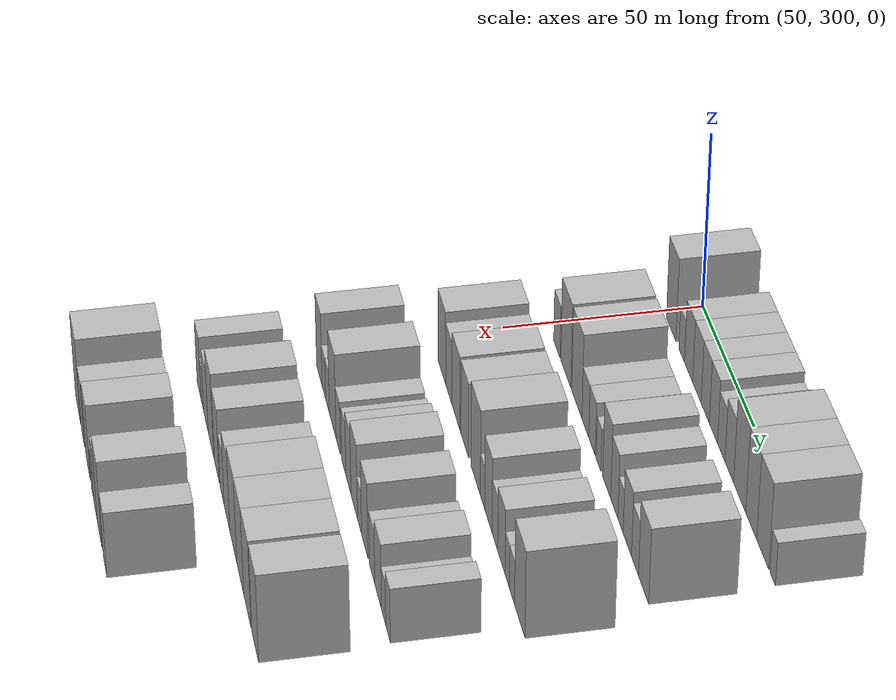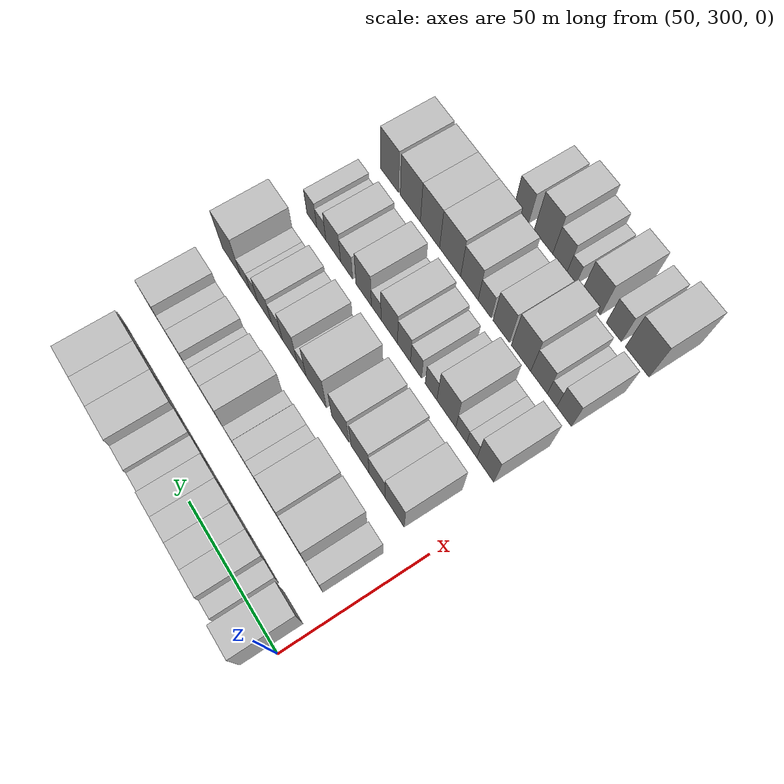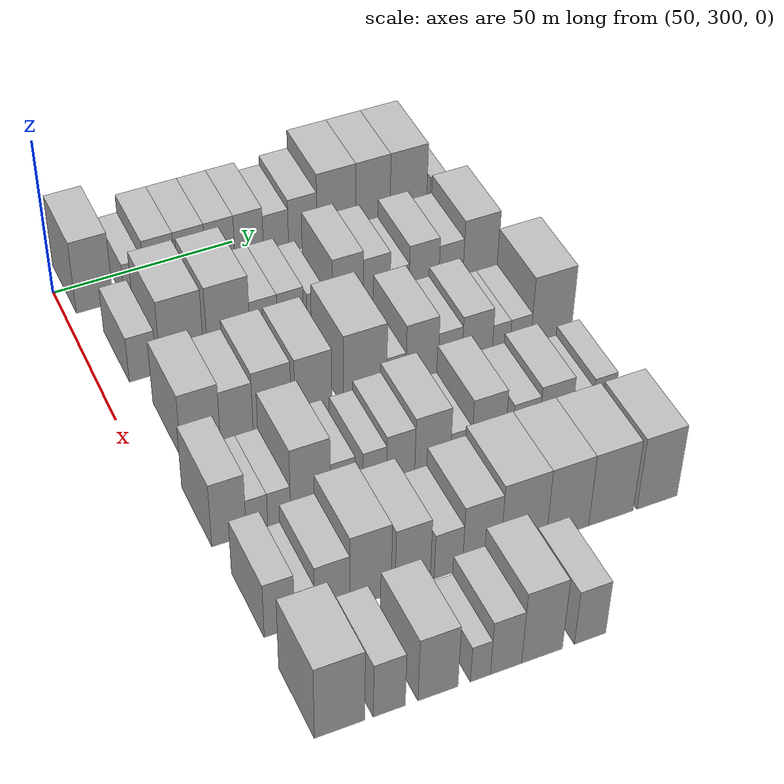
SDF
<sdf version="1.6">
 <world name="default">
  <model name="building_94">
   <static>1</static>
   <pose>50.0000 308.0480 0 0.000000 0.000000 0.000000</pose>
   <link name="link">
    <pose>0 0 12.00 0 0 0</pose>
    <collision name="collision"><geometry><box><size>20.0000 10.0886 24.0000</size></box></geometry></collision>
    <visual name="visual">
     <cast_shadows>0</cast_shadows>
     <geometry><box><size>20.0000 10.0886 24.0000</size></box></geometry>
     <material>
      <script>
       <uri>model://HANNAS_wall/materials/scripts</uri>
       <uri>model://HANNAS_wall/materials/textures</uri>
       <name>vrc/HANNAS_wall</name>
      </script>
     </material>
    </visual>
   </link>
  </model>
  <model name="building_95">
   <static>1</static>
   <pose>50.0000 318.9609 0 0.000000 0.000000 0.000000</pose>
   <link name="link">
    <pose>0 0 6.00 0 0 0</pose>
    <collision name="collision"><geometry><box><size>20.0000 5.7372 12.0000</size></box></geometry></collision>
    <visual name="visual">
     <cast_shadows>0</cast_shadows>
     <geometry><box><size>20.0000 5.7372 12.0000</size></box></geometry>
     <material>
      <script>
       <uri>model://HANNAS_wall/materials/scripts</uri>
       <uri>model://HANNAS_wall/materials/textures</uri>
       <name>vrc/HANNAS_wall</name>
      </script>
     </material>
    </visual>
   </link>
  </model>
  <model name="building_96">
   <static>1</static>
   <pose>50.0000 326.0554 0 0.000000 0.000000 0.000000</pose>
   <link name="link">
    <pose>0 0 9.00 0 0 0</pose>
    <collision name="collision"><geometry><box><size>20.0000 8.4518 18.0000</size></box></geometry></collision>
    <visual name="visual">
     <cast_shadows>0</cast_shadows>
     <geometry><box><size>20.0000 8.4518 18.0000</size></box></geometry>
     <material>
      <script>
       <uri>model://HANNAS_wall/materials/scripts</uri>
       <uri>model://HANNAS_wall/materials/textures</uri>
       <name>vrc/HANNAS_wall</name>
      </script>
     </material>
    </visual>
   </link>
  </model>
  <model name="building_97">
   <static>1</static>
   <pose>50.0000 334.5105 0 0.000000 0.000000 0.000000</pose>
   <link name="link">
    <pose>0 0 9.00 0 0 0</pose>
    <collision name="collision"><geometry><box><size>20.0000 8.4585 18.0000</size></box></geometry></collision>
    <visual name="visual">
     <cast_shadows>0</cast_shadows>
     <geometry><box><size>20.0000 8.4585 18.0000</size></box></geometry>
     <material>
      <script>
       <uri>model://HANNAS_wall/materials/scripts</uri>
       <uri>model://HANNAS_wall/materials/textures</uri>
       <name>vrc/HANNAS_wall</name>
      </script>
     </material>
    </visual>
   </link>
  </model>
  <model name="building_98">
   <static>1</static>
   <pose>50.0000 342.8197 0 0.000000 0.000000 0.000000</pose>
   <link name="link">
    <pose>0 0 9.00 0 0 0</pose>
    <collision name="collision"><geometry><box><size>20.0000 8.1600 18.0000</size></box></geometry></collision>
    <visual name="visual">
     <cast_shadows>0</cast_shadows>
     <geometry><box><size>20.0000 8.1600 18.0000</size></box></geometry>
     <material>
      <script>
       <uri>model://HANNAS_wall/materials/scripts</uri>
       <uri>model://HANNAS_wall/materials/textures</uri>
       <name>vrc/HANNAS_wall</name>
      </script>
     </material>
    </visual>
   </link>
  </model>
  <model name="building_99">
   <static>1</static>
   <pose>50.0000 350.9197 0 0.000000 0.000000 0.000000</pose>
   <link name="link">
    <pose>0 0 9.00 0 0 0</pose>
    <collision name="collision"><geometry><box><size>20.0000 8.0400 18.0000</size></box></geometry></collision>
    <visual name="visual">
     <cast_shadows>0</cast_shadows>
     <geometry><box><size>20.0000 8.0400 18.0000</size></box></geometry>
     <material>
      <script>
       <uri>model://HANNAS_wall/materials/scripts</uri>
       <uri>model://HANNAS_wall/materials/textures</uri>
       <name>vrc/HANNAS_wall</name>
      </script>
     </material>
    </visual>
   </link>
  </model>
  <model name="building_100">
   <static>1</static>
   <pose>50.0000 358.5049 0 0.000000 0.000000 0.000000</pose>
   <link name="link">
    <pose>0 0 7.50 0 0 0</pose>
    <collision name="collision"><geometry><box><size>20.0000 7.1304 15.0000</size></box></geometry></collision>
    <visual name="visual">
     <cast_shadows>0</cast_shadows>
     <geometry><box><size>20.0000 7.1304 15.0000</size></box></geometry>
     <material>
      <script>
       <uri>model://HANNAS_wall/materials/scripts</uri>
       <uri>model://HANNAS_wall/materials/textures</uri>
       <name>vrc/HANNAS_wall</name>
      </script>
     </material>
    </visual>
   </link>
  </model>
  <model name="building_101">
   <static>1</static>
   <pose>50.0000 366.1533 0 0.000000 0.000000 0.000000</pose>
   <link name="link">
    <pose>0 0 9.00 0 0 0</pose>
    <collision name="collision"><geometry><box><size>20.0000 8.1664 18.0000</size></box></geometry></collision>
    <visual name="visual">
     <cast_shadows>0</cast_shadows>
     <geometry><box><size>20.0000 8.1664 18.0000</size></box></geometry>
     <material>
      <script>
       <uri>model://HANNAS_wall/materials/scripts</uri>
       <uri>model://HANNAS_wall/materials/textures</uri>
       <name>vrc/HANNAS_wall</name>
      </script>
     </material>
    </visual>
   </link>
  </model>
  <model name="building_102">
   <static>1</static>
   <pose>50.0000 375.8640 0 0.000000 0.000000 0.000000</pose>
   <link name="link">
    <pose>0 0 12.00 0 0 0</pose>
    <collision name="collision"><geometry><box><size>20.0000 11.2551 24.0000</size></box></geometry></collision>
    <visual name="visual">
     <cast_shadows>0</cast_shadows>
     <geometry><box><size>20.0000 11.2551 24.0000</size></box></geometry>
     <material>
      <script>
       <uri>model://HANNAS_wall/materials/scripts</uri>
       <uri>model://HANNAS_wall/materials/textures</uri>
       <name>vrc/HANNAS_wall</name>
      </script>
     </material>
    </visual>
   </link>
  </model>
  <model name="building_103">
   <static>1</static>
   <pose>50.0000 386.5017 0 0.000000 0.000000 0.000000</pose>
   <link name="link">
    <pose>0 0 12.00 0 0 0</pose>
    <collision name="collision"><geometry><box><size>20.0000 10.0203 24.0000</size></box></geometry></collision>
    <visual name="visual">
     <cast_shadows>0</cast_shadows>
     <geometry><box><size>20.0000 10.0203 24.0000</size></box></geometry>
     <material>
      <script>
       <uri>model://HANNAS_wall/materials/scripts</uri>
       <uri>model://HANNAS_wall/materials/textures</uri>
       <name>vrc/HANNAS_wall</name>
      </script>
     </material>
    </visual>
   </link>
  </model>
  <model name="building_104">
   <static>1</static>
   <pose>50.0000 396.9488 0 0.000000 0.000000 0.000000</pose>
   <link name="link">
    <pose>0 0 12.00 0 0 0</pose>
    <collision name="collision"><geometry><box><size>20.0000 10.8739 24.0000</size></box></geometry></collision>
    <visual name="visual">
     <cast_shadows>0</cast_shadows>
     <geometry><box><size>20.0000 10.8739 24.0000</size></box></geometry>
     <material>
      <script>
       <uri>model://HANNAS_wall/materials/scripts</uri>
       <uri>model://HANNAS_wall/materials/textures</uri>
       <name>vrc/HANNAS_wall</name>
      </script>
     </material>
    </visual>
   </link>
  </model>
  <model name="building_105">
   <static>1</static>
   <pose>50.0000 405.7982 0 0.000000 0.000000 0.000000</pose>
   <link name="link">
    <pose>0 0 6.00 0 0 0</pose>
    <collision name="collision"><geometry><box><size>20.0000 4.8249 12.0000</size></box></geometry></collision>
    <visual name="visual">
     <cast_shadows>0</cast_shadows>
     <geometry><box><size>20.0000 4.8249 12.0000</size></box></geometry>
     <material>
      <script>
       <uri>model://HANNAS_wall/materials/scripts</uri>
       <uri>model://HANNAS_wall/materials/textures</uri>
       <name>vrc/HANNAS_wall</name>
      </script>
     </material>
    </visual>
   </link>
  </model>
  <model name="building_208">
   <static>1</static>
   <pose>79.0000 310.9928 0 0.000000 0.000000 0.000000</pose>
   <link name="link">
    <pose>0 0 7.50 0 0 0</pose>
    <collision name="collision"><geometry><box><size>20.0000 7.3132 15.0000</size></box></geometry></collision>
    <visual name="visual">
     <cast_shadows>0</cast_shadows>
     <geometry><box><size>20.0000 7.3132 15.0000</size></box></geometry>
     <material>
      <script>
       <uri>model://HANNAS_wall/materials/scripts</uri>
       <uri>model://HANNAS_wall/materials/textures</uri>
       <name>vrc/HANNAS_wall</name>
      </script>
     </material>
    </visual>
   </link>
  </model>
  <model name="building_209">
   <static>1</static>
   <pose>79.0000 321.4089 0 0.000000 0.000000 0.000000</pose>
   <link name="link">
    <pose>0 0 12.00 0 0 0</pose>
    <collision name="collision"><geometry><box><size>20.0000 11.5191 24.0000</size></box></geometry></collision>
    <visual name="visual">
     <cast_shadows>0</cast_shadows>
     <geometry><box><size>20.0000 11.5191 24.0000</size></box></geometry>
     <material>
      <script>
       <uri>model://HANNAS_wall/materials/scripts</uri>
       <uri>model://HANNAS_wall/materials/textures</uri>
       <name>vrc/HANNAS_wall</name>
      </script>
     </material>
    </visual>
   </link>
  </model>
  <model name="building_210">
   <static>1</static>
   <pose>79.0000 333.9366 0 0.000000 0.000000 0.000000</pose>
   <link name="link">
    <pose>0 0 12.00 0 0 0</pose>
    <collision name="collision"><geometry><box><size>20.0000 11.5363 24.0000</size></box></geometry></collision>
    <visual name="visual">
     <cast_shadows>0</cast_shadows>
     <geometry><box><size>20.0000 11.5363 24.0000</size></box></geometry>
     <material>
      <script>
       <uri>model://HANNAS_wall/materials/scripts</uri>
       <uri>model://HANNAS_wall/materials/textures</uri>
       <name>vrc/HANNAS_wall</name>
      </script>
     </material>
    </visual>
   </link>
  </model>
  <model name="building_211">
   <static>1</static>
   <pose>79.0000 343.4213 0 0.000000 0.000000 0.000000</pose>
   <link name="link">
    <pose>0 0 7.50 0 0 0</pose>
    <collision name="collision"><geometry><box><size>20.0000 7.4331 15.0000</size></box></geometry></collision>
    <visual name="visual">
     <cast_shadows>0</cast_shadows>
     <geometry><box><size>20.0000 7.4331 15.0000</size></box></geometry>
     <material>
      <script>
       <uri>model://HANNAS_wall/materials/scripts</uri>
       <uri>model://HANNAS_wall/materials/textures</uri>
       <name>vrc/HANNAS_wall</name>
      </script>
     </material>
    </visual>
   </link>
  </model>
  <model name="building_212">
   <static>1</static>
   <pose>79.0000 350.7050 0 0.000000 0.000000 0.000000</pose>
   <link name="link">
    <pose>0 0 7.50 0 0 0</pose>
    <collision name="collision"><geometry><box><size>20.0000 7.1344 15.0000</size></box></geometry></collision>
    <visual name="visual">
     <cast_shadows>0</cast_shadows>
     <geometry><box><size>20.0000 7.1344 15.0000</size></box></geometry>
     <material>
      <script>
       <uri>model://HANNAS_wall/materials/scripts</uri>
       <uri>model://HANNAS_wall/materials/textures</uri>
       <name>vrc/HANNAS_wall</name>
      </script>
     </material>
    </visual>
   </link>
  </model>
  <model name="building_213">
   <static>1</static>
   <pose>79.0000 357.7840 0 0.000000 0.000000 0.000000</pose>
   <link name="link">
    <pose>0 0 6.00 0 0 0</pose>
    <collision name="collision"><geometry><box><size>20.0000 5.0236 12.0000</size></box></geometry></collision>
    <visual name="visual">
     <cast_shadows>0</cast_shadows>
     <geometry><box><size>20.0000 5.0236 12.0000</size></box></geometry>
     <material>
      <script>
       <uri>model://HANNAS_wall/materials/scripts</uri>
       <uri>model://HANNAS_wall/materials/textures</uri>
       <name>vrc/HANNAS_wall</name>
      </script>
     </material>
    </visual>
   </link>
  </model>
  <model name="building_214">
   <static>1</static>
   <pose>79.0000 366.5990 0 0.000000 0.000000 0.000000</pose>
   <link name="link">
    <pose>0 0 10.50 0 0 0</pose>
    <collision name="collision"><geometry><box><size>20.0000 8.6065 21.0000</size></box></geometry></collision>
    <visual name="visual">
     <cast_shadows>0</cast_shadows>
     <geometry><box><size>20.0000 8.6065 21.0000</size></box></geometry>
     <material>
      <script>
       <uri>model://HANNAS_wall/materials/scripts</uri>
       <uri>model://HANNAS_wall/materials/textures</uri>
       <name>vrc/HANNAS_wall</name>
      </script>
     </material>
    </visual>
   </link>
  </model>
  <model name="building_215">
   <static>1</static>
   <pose>79.0000 374.6630 0 0.000000 0.000000 0.000000</pose>
   <link name="link">
    <pose>0 0 9.00 0 0 0</pose>
    <collision name="collision"><geometry><box><size>20.0000 7.5215 18.0000</size></box></geometry></collision>
    <visual name="visual">
     <cast_shadows>0</cast_shadows>
     <geometry><box><size>20.0000 7.5215 18.0000</size></box></geometry>
     <material>
      <script>
       <uri>model://HANNAS_wall/materials/scripts</uri>
       <uri>model://HANNAS_wall/materials/textures</uri>
       <name>vrc/HANNAS_wall</name>
      </script>
     </material>
    </visual>
   </link>
  </model>
  <model name="building_216">
   <static>1</static>
   <pose>79.0000 381.1000 0 0.000000 0.000000 0.000000</pose>
   <link name="link">
    <pose>0 0 6.00 0 0 0</pose>
    <collision name="collision"><geometry><box><size>20.0000 5.3525 12.0000</size></box></geometry></collision>
    <visual name="visual">
     <cast_shadows>0</cast_shadows>
     <geometry><box><size>20.0000 5.3525 12.0000</size></box></geometry>
     <material>
      <script>
       <uri>model://HANNAS_wall/materials/scripts</uri>
       <uri>model://HANNAS_wall/materials/textures</uri>
       <name>vrc/HANNAS_wall</name>
      </script>
     </material>
    </visual>
   </link>
  </model>
  <model name="building_217">
   <static>1</static>
   <pose>79.0000 388.0428 0 0.000000 0.000000 0.000000</pose>
   <link name="link">
    <pose>0 0 9.00 0 0 0</pose>
    <collision name="collision"><geometry><box><size>20.0000 8.5331 18.0000</size></box></geometry></collision>
    <visual name="visual">
     <cast_shadows>0</cast_shadows>
     <geometry><box><size>20.0000 8.5331 18.0000</size></box></geometry>
     <material>
      <script>
       <uri>model://HANNAS_wall/materials/scripts</uri>
       <uri>model://HANNAS_wall/materials/textures</uri>
       <name>vrc/HANNAS_wall</name>
      </script>
     </material>
    </visual>
   </link>
  </model>
  <model name="building_218">
   <static>1</static>
   <pose>79.0000 395.8058 0 0.000000 0.000000 0.000000</pose>
   <link name="link">
    <pose>0 0 7.50 0 0 0</pose>
    <collision name="collision"><geometry><box><size>20.0000 6.9929 15.0000</size></box></geometry></collision>
    <visual name="visual">
     <cast_shadows>0</cast_shadows>
     <geometry><box><size>20.0000 6.9929 15.0000</size></box></geometry>
     <material>
      <script>
       <uri>model://HANNAS_wall/materials/scripts</uri>
       <uri>model://HANNAS_wall/materials/textures</uri>
       <name>vrc/HANNAS_wall</name>
      </script>
     </material>
    </visual>
   </link>
  </model>
  <model name="building_219">
   <static>1</static>
   <pose>79.0000 404.3574 0 0.000000 0.000000 0.000000</pose>
   <link name="link">
    <pose>0 0 10.50 0 0 0</pose>
    <collision name="collision"><geometry><box><size>20.0000 10.1103 21.0000</size></box></geometry></collision>
    <visual name="visual">
     <cast_shadows>0</cast_shadows>
     <geometry><box><size>20.0000 10.1103 21.0000</size></box></geometry>
     <material>
      <script>
       <uri>model://HANNAS_wall/materials/scripts</uri>
       <uri>model://HANNAS_wall/materials/textures</uri>
       <name>vrc/HANNAS_wall</name>
      </script>
     </material>
    </visual>
   </link>
  </model>
  <model name="building_317">
   <static>1</static>
   <pose>108.0000 315.4037 0 0.000000 0.000000 0.000000</pose>
   <link name="link">
    <pose>0 0 10.50 0 0 0</pose>
    <collision name="collision"><geometry><box><size>20.0000 10.1859 21.0000</size></box></geometry></collision>
    <visual name="visual">
     <cast_shadows>0</cast_shadows>
     <geometry><box><size>20.0000 10.1859 21.0000</size></box></geometry>
     <material>
      <script>
       <uri>model://HANNAS_wall/materials/scripts</uri>
       <uri>model://HANNAS_wall/materials/textures</uri>
       <name>vrc/HANNAS_wall</name>
      </script>
     </material>
    </visual>
   </link>
  </model>
  <model name="building_318">
   <static>1</static>
   <pose>108.0000 324.7328 0 0.000000 0.000000 0.000000</pose>
   <link name="link">
    <pose>0 0 9.00 0 0 0</pose>
    <collision name="collision"><geometry><box><size>20.0000 8.4722 18.0000</size></box></geometry></collision>
    <visual name="visual">
     <cast_shadows>0</cast_shadows>
     <geometry><box><size>20.0000 8.4722 18.0000</size></box></geometry>
     <material>
      <script>
       <uri>model://HANNAS_wall/materials/scripts</uri>
       <uri>model://HANNAS_wall/materials/textures</uri>
       <name>vrc/HANNAS_wall</name>
      </script>
     </material>
    </visual>
   </link>
  </model>
  <model name="building_319">
   <static>1</static>
   <pose>108.0000 333.9675 0 0.000000 0.000000 0.000000</pose>
   <link name="link">
    <pose>0 0 10.50 0 0 0</pose>
    <collision name="collision"><geometry><box><size>20.0000 9.9973 21.0000</size></box></geometry></collision>
    <visual name="visual">
     <cast_shadows>0</cast_shadows>
     <geometry><box><size>20.0000 9.9973 21.0000</size></box></geometry>
     <material>
      <script>
       <uri>model://HANNAS_wall/materials/scripts</uri>
       <uri>model://HANNAS_wall/materials/textures</uri>
       <name>vrc/HANNAS_wall</name>
      </script>
     </material>
    </visual>
   </link>
  </model>
  <model name="building_320">
   <static>1</static>
   <pose>108.0000 344.8439 0 0.000000 0.000000 0.000000</pose>
   <link name="link">
    <pose>0 0 10.50 0 0 0</pose>
    <collision name="collision"><geometry><box><size>20.0000 9.7555 21.0000</size></box></geometry></collision>
    <visual name="visual">
     <cast_shadows>0</cast_shadows>
     <geometry><box><size>20.0000 9.7555 21.0000</size></box></geometry>
     <material>
      <script>
       <uri>model://HANNAS_wall/materials/scripts</uri>
       <uri>model://HANNAS_wall/materials/textures</uri>
       <name>vrc/HANNAS_wall</name>
      </script>
     </material>
    </visual>
   </link>
  </model>
  <model name="building_321">
   <static>1</static>
   <pose>108.0000 358.5407 0 0.000000 0.000000 0.000000</pose>
   <link name="link">
    <pose>0 0 12.00 0 0 0</pose>
    <collision name="collision"><geometry><box><size>20.0000 11.6381 24.0000</size></box></geometry></collision>
    <visual name="visual">
     <cast_shadows>0</cast_shadows>
     <geometry><box><size>20.0000 11.6381 24.0000</size></box></geometry>
     <material>
      <script>
       <uri>model://HANNAS_wall/materials/scripts</uri>
       <uri>model://HANNAS_wall/materials/textures</uri>
       <name>vrc/HANNAS_wall</name>
      </script>
     </material>
    </visual>
   </link>
  </model>
  <model name="building_322">
   <static>1</static>
   <pose>108.0000 366.9385 0 0.000000 0.000000 0.000000</pose>
   <link name="link">
    <pose>0 0 6.00 0 0 0</pose>
    <collision name="collision"><geometry><box><size>20.0000 5.1575 12.0000</size></box></geometry></collision>
    <visual name="visual">
     <cast_shadows>0</cast_shadows>
     <geometry><box><size>20.0000 5.1575 12.0000</size></box></geometry>
     <material>
      <script>
       <uri>model://HANNAS_wall/materials/scripts</uri>
       <uri>model://HANNAS_wall/materials/textures</uri>
       <name>vrc/HANNAS_wall</name>
      </script>
     </material>
    </visual>
   </link>
  </model>
  <model name="building_323">
   <static>1</static>
   <pose>108.0000 373.9257 0 0.000000 0.000000 0.000000</pose>
   <link name="link">
    <pose>0 0 10.50 0 0 0</pose>
    <collision name="collision"><geometry><box><size>20.0000 8.8168 21.0000</size></box></geometry></collision>
    <visual name="visual">
     <cast_shadows>0</cast_shadows>
     <geometry><box><size>20.0000 8.8168 21.0000</size></box></geometry>
     <material>
      <script>
       <uri>model://HANNAS_wall/materials/scripts</uri>
       <uri>model://HANNAS_wall/materials/textures</uri>
       <name>vrc/HANNAS_wall</name>
      </script>
     </material>
    </visual>
   </link>
  </model>
  <model name="building_324">
   <static>1</static>
   <pose>108.0000 381.6169 0 0.000000 0.000000 0.000000</pose>
   <link name="link">
    <pose>0 0 7.50 0 0 0</pose>
    <collision name="collision"><geometry><box><size>20.0000 6.5656 15.0000</size></box></geometry></collision>
    <visual name="visual">
     <cast_shadows>0</cast_shadows>
     <geometry><box><size>20.0000 6.5656 15.0000</size></box></geometry>
     <material>
      <script>
       <uri>model://HANNAS_wall/materials/scripts</uri>
       <uri>model://HANNAS_wall/materials/textures</uri>
       <name>vrc/HANNAS_wall</name>
      </script>
     </material>
    </visual>
   </link>
  </model>
  <model name="building_325">
   <static>1</static>
   <pose>108.0000 389.1281 0 0.000000 0.000000 0.000000</pose>
   <link name="link">
    <pose>0 0 9.00 0 0 0</pose>
    <collision name="collision"><geometry><box><size>20.0000 8.4568 18.0000</size></box></geometry></collision>
    <visual name="visual">
     <cast_shadows>0</cast_shadows>
     <geometry><box><size>20.0000 8.4568 18.0000</size></box></geometry>
     <material>
      <script>
       <uri>model://HANNAS_wall/materials/scripts</uri>
       <uri>model://HANNAS_wall/materials/textures</uri>
       <name>vrc/HANNAS_wall</name>
      </script>
     </material>
    </visual>
   </link>
  </model>
  <model name="building_326">
   <static>1</static>
   <pose>108.0000 395.8194 0 0.000000 0.000000 0.000000</pose>
   <link name="link">
    <pose>0 0 6.00 0 0 0</pose>
    <collision name="collision"><geometry><box><size>20.0000 4.9259 12.0000</size></box></geometry></collision>
    <visual name="visual">
     <cast_shadows>0</cast_shadows>
     <geometry><box><size>20.0000 4.9259 12.0000</size></box></geometry>
     <material>
      <script>
       <uri>model://HANNAS_wall/materials/scripts</uri>
       <uri>model://HANNAS_wall/materials/textures</uri>
       <name>vrc/HANNAS_wall</name>
      </script>
     </material>
    </visual>
   </link>
  </model>
  <model name="building_327">
   <static>1</static>
   <pose>108.0000 401.2502 0 0.000000 0.000000 0.000000</pose>
   <link name="link">
    <pose>0 0 6.00 0 0 0</pose>
    <collision name="collision"><geometry><box><size>20.0000 5.9356 12.0000</size></box></geometry></collision>
    <visual name="visual">
     <cast_shadows>0</cast_shadows>
     <geometry><box><size>20.0000 5.9356 12.0000</size></box></geometry>
     <material>
      <script>
       <uri>model://HANNAS_wall/materials/scripts</uri>
       <uri>model://HANNAS_wall/materials/textures</uri>
       <name>vrc/HANNAS_wall</name>
      </script>
     </material>
    </visual>
   </link>
  </model>
  <model name="building_328">
   <static>1</static>
   <pose>108.0000 410.0298 0 0.000000 0.000000 0.000000</pose>
   <link name="link">
    <pose>0 0 12.00 0 0 0</pose>
    <collision name="collision"><geometry><box><size>20.0000 11.6235 24.0000</size></box></geometry></collision>
    <visual name="visual">
     <cast_shadows>0</cast_shadows>
     <geometry><box><size>20.0000 11.6235 24.0000</size></box></geometry>
     <material>
      <script>
       <uri>model://HANNAS_wall/materials/scripts</uri>
       <uri>model://HANNAS_wall/materials/textures</uri>
       <name>vrc/HANNAS_wall</name>
      </script>
     </material>
    </visual>
   </link>
  </model>
  <model name="building_440">
   <static>1</static>
   <pose>137.0000 311.4672 0 0.000000 0.000000 0.000000</pose>
   <link name="link">
    <pose>0 0 10.50 0 0 0</pose>
    <collision name="collision"><geometry><box><size>20.0000 8.5644 21.0000</size></box></geometry></collision>
    <visual name="visual">
     <cast_shadows>0</cast_shadows>
     <geometry><box><size>20.0000 8.5644 21.0000</size></box></geometry>
     <material>
      <script>
       <uri>model://HANNAS_wall/materials/scripts</uri>
       <uri>model://HANNAS_wall/materials/textures</uri>
       <name>vrc/HANNAS_wall</name>
      </script>
     </material>
    </visual>
   </link>
  </model>
  <model name="building_441">
   <static>1</static>
   <pose>137.0000 318.4202 0 0.000000 0.000000 0.000000</pose>
   <link name="link">
    <pose>0 0 6.00 0 0 0</pose>
    <collision name="collision"><geometry><box><size>20.0000 5.3417 12.0000</size></box></geometry></collision>
    <visual name="visual">
     <cast_shadows>0</cast_shadows>
     <geometry><box><size>20.0000 5.3417 12.0000</size></box></geometry>
     <material>
      <script>
       <uri>model://HANNAS_wall/materials/scripts</uri>
       <uri>model://HANNAS_wall/materials/textures</uri>
       <name>vrc/HANNAS_wall</name>
      </script>
     </material>
    </visual>
   </link>
  </model>
  <model name="building_442">
   <static>1</static>
   <pose>137.0000 323.9771 0 0.000000 0.000000 0.000000</pose>
   <link name="link">
    <pose>0 0 6.00 0 0 0</pose>
    <collision name="collision"><geometry><box><size>20.0000 5.7720 12.0000</size></box></geometry></collision>
    <visual name="visual">
     <cast_shadows>0</cast_shadows>
     <geometry><box><size>20.0000 5.7720 12.0000</size></box></geometry>
     <material>
      <script>
       <uri>model://HANNAS_wall/materials/scripts</uri>
       <uri>model://HANNAS_wall/materials/textures</uri>
       <name>vrc/HANNAS_wall</name>
      </script>
     </material>
    </visual>
   </link>
  </model>
  <model name="building_443">
   <static>1</static>
   <pose>137.0000 331.8823 0 0.000000 0.000000 0.000000</pose>
   <link name="link">
    <pose>0 0 12.00 0 0 0</pose>
    <collision name="collision"><geometry><box><size>20.0000 10.0384 24.0000</size></box></geometry></collision>
    <visual name="visual">
     <cast_shadows>0</cast_shadows>
     <geometry><box><size>20.0000 10.0384 24.0000</size></box></geometry>
     <material>
      <script>
       <uri>model://HANNAS_wall/materials/scripts</uri>
       <uri>model://HANNAS_wall/materials/textures</uri>
       <name>vrc/HANNAS_wall</name>
      </script>
     </material>
    </visual>
   </link>
  </model>
  <model name="building_444">
   <static>1</static>
   <pose>137.0000 340.0509 0 0.000000 0.000000 0.000000</pose>
   <link name="link">
    <pose>0 0 7.50 0 0 0</pose>
    <collision name="collision"><geometry><box><size>20.0000 6.2988 15.0000</size></box></geometry></collision>
    <visual name="visual">
     <cast_shadows>0</cast_shadows>
     <geometry><box><size>20.0000 6.2988 15.0000</size></box></geometry>
     <material>
      <script>
       <uri>model://HANNAS_wall/materials/scripts</uri>
       <uri>model://HANNAS_wall/materials/textures</uri>
       <name>vrc/HANNAS_wall</name>
      </script>
     </material>
    </visual>
   </link>
  </model>
  <model name="building_445">
   <static>1</static>
   <pose>137.0000 348.2202 0 0.000000 0.000000 0.000000</pose>
   <link name="link">
    <pose>0 0 7.50 0 0 0</pose>
    <collision name="collision"><geometry><box><size>20.0000 6.0398 15.0000</size></box></geometry></collision>
    <visual name="visual">
     <cast_shadows>0</cast_shadows>
     <geometry><box><size>20.0000 6.0398 15.0000</size></box></geometry>
     <material>
      <script>
       <uri>model://HANNAS_wall/materials/scripts</uri>
       <uri>model://HANNAS_wall/materials/textures</uri>
       <name>vrc/HANNAS_wall</name>
      </script>
     </material>
    </visual>
   </link>
  </model>
  <model name="building_446">
   <static>1</static>
   <pose>137.0000 354.8873 0 0.000000 0.000000 0.000000</pose>
   <link name="link">
    <pose>0 0 9.00 0 0 0</pose>
    <collision name="collision"><geometry><box><size>20.0000 7.2944 18.0000</size></box></geometry></collision>
    <visual name="visual">
     <cast_shadows>0</cast_shadows>
     <geometry><box><size>20.0000 7.2944 18.0000</size></box></geometry>
     <material>
      <script>
       <uri>model://HANNAS_wall/materials/scripts</uri>
       <uri>model://HANNAS_wall/materials/textures</uri>
       <name>vrc/HANNAS_wall</name>
      </script>
     </material>
    </visual>
   </link>
  </model>
  <model name="building_447">
   <static>1</static>
   <pose>137.0000 363.2008 0 0.000000 0.000000 0.000000</pose>
   <link name="link">
    <pose>0 0 10.50 0 0 0</pose>
    <collision name="collision"><geometry><box><size>20.0000 9.3327 21.0000</size></box></geometry></collision>
    <visual name="visual">
     <cast_shadows>0</cast_shadows>
     <geometry><box><size>20.0000 9.3327 21.0000</size></box></geometry>
     <material>
      <script>
       <uri>model://HANNAS_wall/materials/scripts</uri>
       <uri>model://HANNAS_wall/materials/textures</uri>
       <name>vrc/HANNAS_wall</name>
      </script>
     </material>
    </visual>
   </link>
  </model>
  <model name="building_448">
   <static>1</static>
   <pose>137.0000 370.6466 0 0.000000 0.000000 0.000000</pose>
   <link name="link">
    <pose>0 0 6.00 0 0 0</pose>
    <collision name="collision"><geometry><box><size>20.0000 5.5590 12.0000</size></box></geometry></collision>
    <visual name="visual">
     <cast_shadows>0</cast_shadows>
     <geometry><box><size>20.0000 5.5590 12.0000</size></box></geometry>
     <material>
      <script>
       <uri>model://HANNAS_wall/materials/scripts</uri>
       <uri>model://HANNAS_wall/materials/textures</uri>
       <name>vrc/HANNAS_wall</name>
      </script>
     </material>
    </visual>
   </link>
  </model>
  <model name="building_449">
   <static>1</static>
   <pose>137.0000 377.8874 0 0.000000 0.000000 0.000000</pose>
   <link name="link">
    <pose>0 0 10.50 0 0 0</pose>
    <collision name="collision"><geometry><box><size>20.0000 8.9225 21.0000</size></box></geometry></collision>
    <visual name="visual">
     <cast_shadows>0</cast_shadows>
     <geometry><box><size>20.0000 8.9225 21.0000</size></box></geometry>
     <material>
      <script>
       <uri>model://HANNAS_wall/materials/scripts</uri>
       <uri>model://HANNAS_wall/materials/textures</uri>
       <name>vrc/HANNAS_wall</name>
      </script>
     </material>
    </visual>
   </link>
  </model>
  <model name="building_450">
   <static>1</static>
   <pose>137.0000 387.9266 0 0.000000 0.000000 0.000000</pose>
   <link name="link">
    <pose>0 0 7.50 0 0 0</pose>
    <collision name="collision"><geometry><box><size>20.0000 7.1559 15.0000</size></box></geometry></collision>
    <visual name="visual">
     <cast_shadows>0</cast_shadows>
     <geometry><box><size>20.0000 7.1559 15.0000</size></box></geometry>
     <material>
      <script>
       <uri>model://HANNAS_wall/materials/scripts</uri>
       <uri>model://HANNAS_wall/materials/textures</uri>
       <name>vrc/HANNAS_wall</name>
      </script>
     </material>
    </visual>
   </link>
  </model>
  <model name="building_451">
   <static>1</static>
   <pose>137.0000 395.9573 0 0.000000 0.000000 0.000000</pose>
   <link name="link">
    <pose>0 0 9.00 0 0 0</pose>
    <collision name="collision"><geometry><box><size>20.0000 8.9057 18.0000</size></box></geometry></collision>
    <visual name="visual">
     <cast_shadows>0</cast_shadows>
     <geometry><box><size>20.0000 8.9057 18.0000</size></box></geometry>
     <material>
      <script>
       <uri>model://HANNAS_wall/materials/scripts</uri>
       <uri>model://HANNAS_wall/materials/textures</uri>
       <name>vrc/HANNAS_wall</name>
      </script>
     </material>
    </visual>
   </link>
  </model>
  <model name="building_452">
   <static>1</static>
   <pose>137.0000 403.1798 0 0.000000 0.000000 0.000000</pose>
   <link name="link">
    <pose>0 0 6.00 0 0 0</pose>
    <collision name="collision"><geometry><box><size>20.0000 5.5392 12.0000</size></box></geometry></collision>
    <visual name="visual">
     <cast_shadows>0</cast_shadows>
     <geometry><box><size>20.0000 5.5392 12.0000</size></box></geometry>
     <material>
      <script>
       <uri>model://HANNAS_wall/materials/scripts</uri>
       <uri>model://HANNAS_wall/materials/textures</uri>
       <name>vrc/HANNAS_wall</name>
      </script>
     </material>
    </visual>
   </link>
  </model>
  <model name="building_453">
   <static>1</static>
   <pose>137.0000 409.0090 0 0.000000 0.000000 0.000000</pose>
   <link name="link">
    <pose>0 0 7.50 0 0 0</pose>
    <collision name="collision"><geometry><box><size>20.0000 6.1193 15.0000</size></box></geometry></collision>
    <visual name="visual">
     <cast_shadows>0</cast_shadows>
     <geometry><box><size>20.0000 6.1193 15.0000</size></box></geometry>
     <material>
      <script>
       <uri>model://HANNAS_wall/materials/scripts</uri>
       <uri>model://HANNAS_wall/materials/textures</uri>
       <name>vrc/HANNAS_wall</name>
      </script>
     </material>
    </visual>
   </link>
  </model>
  <model name="building_562">
   <static>1</static>
   <pose>166.0000 312.1939 0 0.000000 0.000000 0.000000</pose>
   <link name="link">
    <pose>0 0 9.00 0 0 0</pose>
    <collision name="collision"><geometry><box><size>20.0000 7.2941 18.0000</size></box></geometry></collision>
    <visual name="visual">
     <cast_shadows>0</cast_shadows>
     <geometry><box><size>20.0000 7.2941 18.0000</size></box></geometry>
     <material>
      <script>
       <uri>model://HANNAS_wall/materials/scripts</uri>
       <uri>model://HANNAS_wall/materials/textures</uri>
       <name>vrc/HANNAS_wall</name>
      </script>
     </material>
    </visual>
   </link>
  </model>
  <model name="building_563">
   <static>1</static>
   <pose>166.0000 318.2585 0 0.000000 0.000000 0.000000</pose>
   <link name="link">
    <pose>0 0 6.00 0 0 0</pose>
    <collision name="collision"><geometry><box><size>20.0000 4.8350 12.0000</size></box></geometry></collision>
    <visual name="visual">
     <cast_shadows>0</cast_shadows>
     <geometry><box><size>20.0000 4.8350 12.0000</size></box></geometry>
     <material>
      <script>
       <uri>model://HANNAS_wall/materials/scripts</uri>
       <uri>model://HANNAS_wall/materials/textures</uri>
       <name>vrc/HANNAS_wall</name>
      </script>
     </material>
    </visual>
   </link>
  </model>
  <model name="building_564">
   <static>1</static>
   <pose>166.0000 324.9278 0 0.000000 0.000000 0.000000</pose>
   <link name="link">
    <pose>0 0 9.00 0 0 0</pose>
    <collision name="collision"><geometry><box><size>20.0000 8.5036 18.0000</size></box></geometry></collision>
    <visual name="visual">
     <cast_shadows>0</cast_shadows>
     <geometry><box><size>20.0000 8.5036 18.0000</size></box></geometry>
     <material>
      <script>
       <uri>model://HANNAS_wall/materials/scripts</uri>
       <uri>model://HANNAS_wall/materials/textures</uri>
       <name>vrc/HANNAS_wall</name>
      </script>
     </material>
    </visual>
   </link>
  </model>
  <model name="building_565">
   <static>1</static>
   <pose>166.0000 334.2445 0 0.000000 0.000000 0.000000</pose>
   <link name="link">
    <pose>0 0 12.00 0 0 0</pose>
    <collision name="collision"><geometry><box><size>20.0000 10.1299 24.0000</size></box></geometry></collision>
    <visual name="visual">
     <cast_shadows>0</cast_shadows>
     <geometry><box><size>20.0000 10.1299 24.0000</size></box></geometry>
     <material>
      <script>
       <uri>model://HANNAS_wall/materials/scripts</uri>
       <uri>model://HANNAS_wall/materials/textures</uri>
       <name>vrc/HANNAS_wall</name>
      </script>
     </material>
    </visual>
   </link>
  </model>
  <model name="building_566">
   <static>1</static>
   <pose>166.0000 344.6729 0 0.000000 0.000000 0.000000</pose>
   <link name="link">
    <pose>0 0 10.50 0 0 0</pose>
    <collision name="collision"><geometry><box><size>20.0000 8.7270 21.0000</size></box></geometry></collision>
    <visual name="visual">
     <cast_shadows>0</cast_shadows>
     <geometry><box><size>20.0000 8.7270 21.0000</size></box></geometry>
     <material>
      <script>
       <uri>model://HANNAS_wall/materials/scripts</uri>
       <uri>model://HANNAS_wall/materials/textures</uri>
       <name>vrc/HANNAS_wall</name>
      </script>
     </material>
    </visual>
   </link>
  </model>
  <model name="building_567">
   <static>1</static>
   <pose>166.0000 353.5871 0 0.000000 0.000000 0.000000</pose>
   <link name="link">
    <pose>0 0 7.50 0 0 0</pose>
    <collision name="collision"><geometry><box><size>20.0000 7.1013 15.0000</size></box></geometry></collision>
    <visual name="visual">
     <cast_shadows>0</cast_shadows>
     <geometry><box><size>20.0000 7.1013 15.0000</size></box></geometry>
     <material>
      <script>
       <uri>model://HANNAS_wall/materials/scripts</uri>
       <uri>model://HANNAS_wall/materials/textures</uri>
       <name>vrc/HANNAS_wall</name>
      </script>
     </material>
    </visual>
   </link>
  </model>
  <model name="building_568">
   <static>1</static>
   <pose>166.0000 361.9610 0 0.000000 0.000000 0.000000</pose>
   <link name="link">
    <pose>0 0 10.50 0 0 0</pose>
    <collision name="collision"><geometry><box><size>20.0000 9.6466 21.0000</size></box></geometry></collision>
    <visual name="visual">
     <cast_shadows>0</cast_shadows>
     <geometry><box><size>20.0000 9.6466 21.0000</size></box></geometry>
     <material>
      <script>
       <uri>model://HANNAS_wall/materials/scripts</uri>
       <uri>model://HANNAS_wall/materials/textures</uri>
       <name>vrc/HANNAS_wall</name>
      </script>
     </material>
    </visual>
   </link>
  </model>
  <model name="building_569">
   <static>1</static>
   <pose>166.0000 372.7122 0 0.000000 0.000000 0.000000</pose>
   <link name="link">
    <pose>0 0 12.00 0 0 0</pose>
    <collision name="collision"><geometry><box><size>20.0000 11.8557 24.0000</size></box></geometry></collision>
    <visual name="visual">
     <cast_shadows>0</cast_shadows>
     <geometry><box><size>20.0000 11.8557 24.0000</size></box></geometry>
     <material>
      <script>
       <uri>model://HANNAS_wall/materials/scripts</uri>
       <uri>model://HANNAS_wall/materials/textures</uri>
       <name>vrc/HANNAS_wall</name>
      </script>
     </material>
    </visual>
   </link>
  </model>
  <model name="building_570">
   <static>1</static>
   <pose>166.0000 384.1857 0 0.000000 0.000000 0.000000</pose>
   <link name="link">
    <pose>0 0 12.00 0 0 0</pose>
    <collision name="collision"><geometry><box><size>20.0000 11.0914 24.0000</size></box></geometry></collision>
    <visual name="visual">
     <cast_shadows>0</cast_shadows>
     <geometry><box><size>20.0000 11.0914 24.0000</size></box></geometry>
     <material>
      <script>
       <uri>model://HANNAS_wall/materials/scripts</uri>
       <uri>model://HANNAS_wall/materials/textures</uri>
       <name>vrc/HANNAS_wall</name>
      </script>
     </material>
    </visual>
   </link>
  </model>
  <model name="building_571">
   <static>1</static>
   <pose>166.0000 395.6338 0 0.000000 0.000000 0.000000</pose>
   <link name="link">
    <pose>0 0 12.00 0 0 0</pose>
    <collision name="collision"><geometry><box><size>20.0000 11.8047 24.0000</size></box></geometry></collision>
    <visual name="visual">
     <cast_shadows>0</cast_shadows>
     <geometry><box><size>20.0000 11.8047 24.0000</size></box></geometry>
     <material>
      <script>
       <uri>model://HANNAS_wall/materials/scripts</uri>
       <uri>model://HANNAS_wall/materials/textures</uri>
       <name>vrc/HANNAS_wall</name>
      </script>
     </material>
    </visual>
   </link>
  </model>
  <model name="building_572">
   <static>1</static>
   <pose>166.0000 407.9234 0 0.000000 0.000000 0.000000</pose>
   <link name="link">
    <pose>0 0 12.00 0 0 0</pose>
    <collision name="collision"><geometry><box><size>20.0000 10.7745 24.0000</size></box></geometry></collision>
    <visual name="visual">
     <cast_shadows>0</cast_shadows>
     <geometry><box><size>20.0000 10.7745 24.0000</size></box></geometry>
     <material>
      <script>
       <uri>model://HANNAS_wall/materials/scripts</uri>
       <uri>model://HANNAS_wall/materials/textures</uri>
       <name>vrc/HANNAS_wall</name>
      </script>
     </material>
    </visual>
   </link>
  </model>
  <model name="building_665">
   <static>1</static>
   <pose>195.0000 314.1776 0 0.000000 0.000000 0.000000</pose>
   <link name="link">
    <pose>0 0 12.00 0 0 0</pose>
    <collision name="collision"><geometry><box><size>20.0000 11.6703 24.0000</size></box></geometry></collision>
    <visual name="visual">
     <cast_shadows>0</cast_shadows>
     <geometry><box><size>20.0000 11.6703 24.0000</size></box></geometry>
     <material>
      <script>
       <uri>model://HANNAS_wall/materials/scripts</uri>
       <uri>model://HANNAS_wall/materials/textures</uri>
       <name>vrc/HANNAS_wall</name>
      </script>
     </material>
    </visual>
   </link>
  </model>
  <model name="building_666">
   <static>1</static>
   <pose>195.0000 325.7799 0 0.000000 0.000000 0.000000</pose>
   <link name="link">
    <pose>0 0 9.00 0 0 0</pose>
    <collision name="collision"><geometry><box><size>20.0000 7.5344 18.0000</size></box></geometry></collision>
    <visual name="visual">
     <cast_shadows>0</cast_shadows>
     <geometry><box><size>20.0000 7.5344 18.0000</size></box></geometry>
     <material>
      <script>
       <uri>model://HANNAS_wall/materials/scripts</uri>
       <uri>model://HANNAS_wall/materials/textures</uri>
       <name>vrc/HANNAS_wall</name>
      </script>
     </material>
    </visual>
   </link>
  </model>
  <model name="building_667">
   <static>1</static>
   <pose>195.0000 337.3128 0 0.000000 0.000000 0.000000</pose>
   <link name="link">
    <pose>0 0 10.50 0 0 0</pose>
    <collision name="collision"><geometry><box><size>20.0000 9.5313 21.0000</size></box></geometry></collision>
    <visual name="visual">
     <cast_shadows>0</cast_shadows>
     <geometry><box><size>20.0000 9.5313 21.0000</size></box></geometry>
     <material>
      <script>
       <uri>model://HANNAS_wall/materials/scripts</uri>
       <uri>model://HANNAS_wall/materials/textures</uri>
       <name>vrc/HANNAS_wall</name>
      </script>
     </material>
    </visual>
   </link>
  </model>
  <model name="building_668">
   <static>1</static>
   <pose>195.0000 347.4971 0 0.000000 0.000000 0.000000</pose>
   <link name="link">
    <pose>0 0 6.00 0 0 0</pose>
    <collision name="collision"><geometry><box><size>20.0000 4.8373 12.0000</size></box></geometry></collision>
    <visual name="visual">
     <cast_shadows>0</cast_shadows>
     <geometry><box><size>20.0000 4.8373 12.0000</size></box></geometry>
     <material>
      <script>
       <uri>model://HANNAS_wall/materials/scripts</uri>
       <uri>model://HANNAS_wall/materials/textures</uri>
       <name>vrc/HANNAS_wall</name>
      </script>
     </material>
    </visual>
   </link>
  </model>
  <model name="building_669">
   <static>1</static>
   <pose>195.0000 353.7257 0 0.000000 0.000000 0.000000</pose>
   <link name="link">
    <pose>0 0 9.00 0 0 0</pose>
    <collision name="collision"><geometry><box><size>20.0000 7.6199 18.0000</size></box></geometry></collision>
    <visual name="visual">
     <cast_shadows>0</cast_shadows>
     <geometry><box><size>20.0000 7.6199 18.0000</size></box></geometry>
     <material>
      <script>
       <uri>model://HANNAS_wall/materials/scripts</uri>
       <uri>model://HANNAS_wall/materials/textures</uri>
       <name>vrc/HANNAS_wall</name>
      </script>
     </material>
    </visual>
   </link>
  </model>
  <model name="building_670">
   <static>1</static>
   <pose>195.0000 362.5547 0 0.000000 0.000000 0.000000</pose>
   <link name="link">
    <pose>0 0 12.00 0 0 0</pose>
    <collision name="collision"><geometry><box><size>20.0000 10.0382 24.0000</size></box></geometry></collision>
    <visual name="visual">
     <cast_shadows>0</cast_shadows>
     <geometry><box><size>20.0000 10.0382 24.0000</size></box></geometry>
     <material>
      <script>
       <uri>model://HANNAS_wall/materials/scripts</uri>
       <uri>model://HANNAS_wall/materials/textures</uri>
       <name>vrc/HANNAS_wall</name>
      </script>
     </material>
    </visual>
   </link>
  </model>
  <model name="building_671">
   <static>1</static>
   <pose>195.0000 374.4825 0 0.000000 0.000000 0.000000</pose>
   <link name="link">
    <pose>0 0 9.00 0 0 0</pose>
    <collision name="collision"><geometry><box><size>20.0000 7.8172 18.0000</size></box></geometry></collision>
    <visual name="visual">
     <cast_shadows>0</cast_shadows>
     <geometry><box><size>20.0000 7.8172 18.0000</size></box></geometry>
     <material>
      <script>
       <uri>model://HANNAS_wall/materials/scripts</uri>
       <uri>model://HANNAS_wall/materials/textures</uri>
       <name>vrc/HANNAS_wall</name>
      </script>
     </material>
    </visual>
   </link>
  </model>
 </world>
</sdf>
